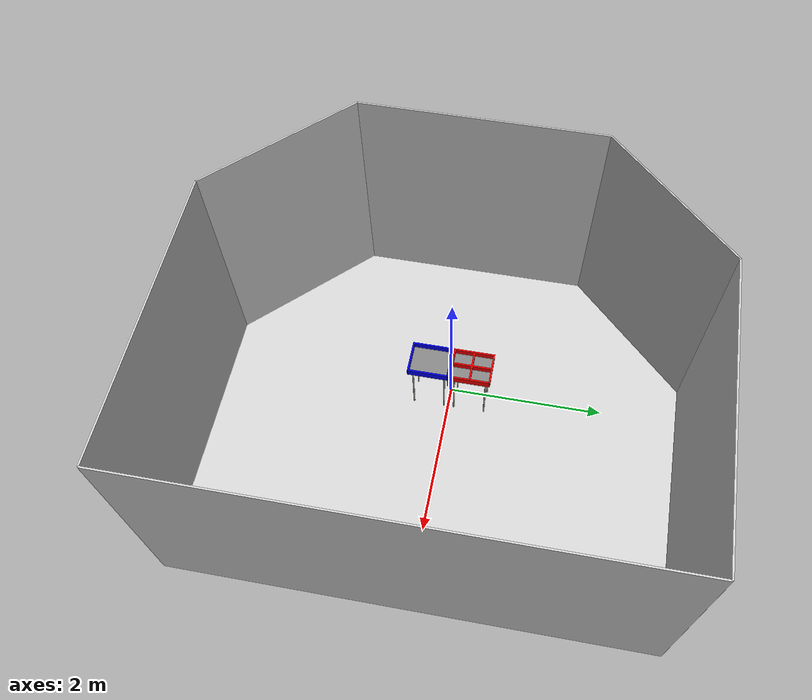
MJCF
<mujoco model="bins_arena">
  <asset>
    <texture builtin="gradient" height="256" rgb1=".9 .9 1." rgb2=".2 .3 .4" type="skybox" width="256"/>
    <texture file="../textures/light-gray-floor-tile.png" type="2d" name="texplane"/>
    <material name="floorplane" reflectance="0.01" shininess="0.0" specular="0.0" texrepeat="2 2" texture="texplane" texuniform="true"/>
    <!-- steel legs -->
    <texture file="../textures/steel-brushed.png" type="cube" name="tex-steel-brushed"/>
    <material name="table_legs_metal" reflectance="0.8" shininess="0.8" texrepeat="1 1" texture="tex-steel-brushed" />
    <!-- plaster walls -->
    <texture file="../textures/light-gray-plaster.png" type="2d" name="tex-light-gray-plaster"/>
    <material name="walls_mat" reflectance="0.0" shininess="0.1" specular="0.1" texrepeat="3 3" texture="tex-light-gray-plaster" texuniform="true" />
    <!-- bins -->
    <texture file="../textures/light-wood.png" type="2d" name="tex-light-wood"/>
    <texture file="../textures/dark-wood.png" type="2d" name="tex-dark-wood"/>
    <material name="light-wood" reflectance="0" texrepeat="15 15" texture="tex-light-wood" texuniform="true"/>
    <material name="dark-wood" reflectance="0" texrepeat="5 5" texture="tex-dark-wood" texuniform="true"/>
  </asset>
  <worldbody>
    <geom condim="3" group="1" material="floorplane" name="floor" pos="0 0 0" size="3 3 .125" type="plane"/>
    <!-- Walls (visual only) -->
    <geom pos="-1.25 2.25 1.5" quat="0.6532815 0.6532815 0.2705981 0.2705981" size="1.06 1.5 0.01" type="box" conaffinity="0" contype="0" group="1" name="wall_leftcorner_visual" material="walls_mat"/>
    <geom pos="-1.25 -2.25 1.5" quat="0.6532815 0.6532815 -0.2705981 -0.2705981" size="1.06 1.5 0.01" type="box" conaffinity="0" contype="0" group="1" name="wall_rightcorner_visual" material="walls_mat"/>
    <geom pos="1.25 3 1.5" quat="0.7071 0.7071 0 0" size="1.75 1.5 0.01" type="box" conaffinity="0" contype="0" group="1" name="wall_left_visual" material="walls_mat"/>
    <geom pos="1.25 -3 1.5" quat="0.7071 -0.7071 0 0" size="1.75 1.5 0.01" type="box" conaffinity="0" contype="0" group="1" name="wall_right_visual" material="walls_mat"/>
    <geom pos="-2 0 1.5" quat="0.5 0.5 0.5 0.5" size="1.5 1.5 0.01" type="box" conaffinity="0" contype="0" group="1" name="wall_rear_visual" material="walls_mat"/>
    <geom pos="3 0 1.5" quat="0.5 0.5 -0.5 -0.5" size="3 1.5 0.01" type="box" conaffinity="0" contype="0" group="1" name="wall_front_visual" material="walls_mat"/>
    <!-- bins -->
    <body name="bin1" pos="0.1 -0.25 0.8">
      <geom pos="0 0 0" size="0.2 0.25 0.02" type="box" group="0" friction="1 0.005 0.0001"/>
      <geom pos="0 0 0" material="light-wood" size="0.2 0.25 0.02" type="box" conaffinity="0" contype="0" group="1"/>
        <geom pos="0 0.25 0.05" size="0.21 0.01 0.05" type="box" group="0" friction="1 0.005 0.0001" rgba="0 0 1 1"/>
        <geom pos="0 0.25 0.05" size="0.21 0.01 0.05" type="box" conaffinity="0" contype="0" group="1" material="light-wood"/>
        <geom pos="0 -0.25 0.05" size="0.21 0.01 0.05" type="box" group="0" friction="1 0.005 0.0001" rgba="0 0 1 1"/>
        <geom pos="0 -0.25 0.05" size="0.21 0.01 0.05" type="box" conaffinity="0" contype="0" group="1" material="light-wood"/>
        <geom pos="0.2 0 0.05" size="0.01 0.25 0.05" type="box" group="0" friction="1 0.005 0.0001" rgba="0 0 1 1"/>
        <geom pos="0.2 0 0.05" size="0.01 0.25 0.05" type="box" conaffinity="0" contype="0" group="1" material="light-wood"/>
        <geom pos="-0.2 0 0.05" size="0.01 0.25 0.05" type="box" group="0" friction="1 0.005 0.0001" rgba="0 0 1 1"/>
        <geom pos="-0.2 0 0.05" size="0.01 0.25 0.05" type="box" conaffinity="0" contype="0" group="1" material="light-wood"/>
        <!-- Legs (visual only) -->
        <geom pos="0.15 0.2 -0.4" size="0.01 0.4" type="cylinder" conaffinity="0" contype="0" group="1" name="bin1_leg1_visual" material="table_legs_metal"/>
        <geom pos="-0.15 0.2 -0.4" size="0.01 0.4" type="cylinder" conaffinity="0" contype="0" group="1" name="bin1_leg2_visual" material="table_legs_metal"/>
        <geom pos="-0.15 -0.2 -0.4" size="0.01 0.4" type="cylinder" conaffinity="0" contype="0" group="1" name="bin1_leg3_visual" material="table_legs_metal"/>
        <geom pos="0.15 -0.2 -0.4" size="0.01 0.4" type="cylinder" conaffinity="0" contype="0" group="1" name="bin1_leg4_visual" material="table_legs_metal"/>
    </body>
    <body name="bin2" pos="0.1 0.28 0.8">
      <geom pos="0 0 0" size="0.2 0.25 0.02" type="box" group="0" friction="1 0.005 0.0001"/>
      <geom pos="0 0 0" size="0.2 0.25 0.02" type="box" conaffinity="0" contype="0" group="1" material="dark-wood"/>
        <geom pos="0 0.25 0.05" size="0.21 0.01 0.05" type="box" group="0" friction="1 0.005 0.0001" rgba="1 0 0 1"/>
        <geom pos="0 0.25 0.05" size="0.21 0.01 0.05" type="box" conaffinity="0" contype="0" group="1" material="dark-wood"/>
        <geom pos="0 0 0.05" size="0.2 0.01 0.05" type="box" group="0" friction="1 0.005 0.0001" rgba="1 0 0 1"/>
        <geom pos="0 0 0.05" size="0.2 0.01 0.05" type="box" conaffinity="0" contype="0" group="1" material="dark-wood"/>
        <geom pos="0 -0.25 0.05" size="0.21 0.01 0.05" type="box" group="0" friction="1 0.005 0.0001" rgba="1 0 0 1"/>
        <geom pos="0 -0.25 0.05" size="0.21 0.01 0.05" type="box" conaffinity="0" contype="0" group="1" material="dark-wood"/>
        <geom pos="0.2 0 0.05" size="0.01 0.25 0.05" type="box" group="0" friction="1 0.005 0.0001" rgba="1 0 0 1"/>
        <geom pos="0.2 0 0.05" size="0.01 0.25 0.05" type="box" conaffinity="0" contype="0" group="1" material="dark-wood"/>
        <geom pos="0 0 0.05" size="0.01 0.25 0.05" type="box" group="0" friction="1 0.005 0.0001" rgba="1 0 0 1"/>
        <geom pos="0 0 0.05" size="0.01 0.25 0.05" type="box" conaffinity="0" contype="0" group="1" material="dark-wood"/>
        <geom pos="-0.2 0 0.05" size="0.01 0.25 0.05" type="box" group="0" friction="1 0.005 0.0001" rgba="1 0 0 1"/>
        <geom pos="-0.2 0 0.05" size="0.01 0.25 0.05" type="box" conaffinity="0" contype="0" group="1" material="dark-wood"/>
        <!-- Legs (visual only) -->
        <geom pos="0.15 0.2 -0.4" size="0.01 0.4" type="cylinder" conaffinity="0" contype="0" group="1" name="bin2_leg1_visual" material="table_legs_metal"/>
        <geom pos="-0.15 0.2 -0.4" size="0.01 0.4" type="cylinder" conaffinity="0" contype="0" group="1" name="bin2_leg2_visual" material="table_legs_metal"/>
        <geom pos="-0.15 -0.2 -0.4" size="0.01 0.4" type="cylinder" conaffinity="0" contype="0" group="1" name="bin2_leg3_visual" material="table_legs_metal"/>
        <geom pos="0.15 -0.2 -0.4" size="0.01 0.4" type="cylinder" conaffinity="0" contype="0" group="1" name="bin2_leg4_visual" material="table_legs_metal"/>
    </body>
    <light pos="1.0 1.0 1.5" dir="-0.2 -0.2 -1" specular="0.3 0.3 0.3" directional="true" castshadow="false"/>
    <!-- front view -->
    <camera mode="fixed" name="frontview" pos="1.6 0 1.45" quat="0.56 0.43 0.43 0.56"/>
    <!-- bird view -->
    <camera mode="fixed" name="birdview" pos="-0.2 0 3.0" quat="0.7071 0 0 0.7071"/>
    <!-- agent view -->
    <camera mode="fixed" name="agentview" pos="1.0 0 1.75" quat="0.653 0.271 0.271 0.653"/>
    <!-- new camera -->
    <camera mode="fixed" name="sideview2" pos="0. -1.5 1.4879572214102434" quat="0.7933533 0.6087614 0 0" />
    <camera mode="fixed" name="backview" pos="-0.8 0.7 1.2" quat=" 0.4777144 0.1530459 -0.5213338 -0.6903455 " />
    <camera mode="fixed" name="spaceview" pos="0.85 0 1.55" quat="0.6341848 0.3127453 0.3127453 0.6341848"/>
    <!-- side agent view -->
    <camera mode="fixed" name="sideagentview" pos="0 0.5 1.35" quat="0.0 0.0 0.383 0.923"/>
    <!-- new camera ends-->
    <!-- side view -->
    <camera mode="fixed" name="sideview" pos="-0.05651774593317116 1.2761224129427358 1.4879572214102434" quat="0.009905065491771751 0.006877963156909582 0.5912228352893879 0.806418094001364" />
    <camera mode="fixed" name="fronttableview" pos="0.8 0 1.2" quat="0.5608419  0.43064642 0.43064642 0.5608419"/>
    <camera mode="fixed" name="sidetableview" pos="0 0.8 1" quat="0.01071808 0.00552625 0.69142354 0.72234905"/>
    <camera mode="fixed" name="squared0view" pos="0.6 0.6 1" quat="0.28633323 0.26970193 0.63667727 0.6632619"/>
    <camera mode="fixed" name="squared0viewfar" pos="0.9 0.9 1.0" quat="0.28633323 0.26970193 0.63667727 0.6632619"/>
    <camera mode="fixed" name="squared0view2" pos="0.6 -0.6 1" quat="0.6714651  0.6409069  0.25949073 0.2665288"/>
    <camera mode="fixed" name="squared0view2far" pos="0.9 -0.9 1" quat="0.6714651  0.6409069  0.25949073 0.2665288"/>
    <camera mode="fixed" name="squared0view3" pos="-0.6 0.6 1" quat="-0.2665288  -0.25949073  0.6409069 0.6714651"/>
    <camera mode="fixed" name="squared0view3far" pos="-0.9 0.9 1" quat="-0.2665288  -0.25949073  0.6409069 0.6714651"/>
    <camera mode="fixed" name="squared0view4" pos="-0.6 -0.6 1" quat="0.6632619 0.63667727 -0.26970193 -0.28633323"/>
    <camera mode="fixed" name="squared0view4far" pos="-0.9 -0.9 1" quat="0.6632619 0.63667727 -0.26970193 -0.28633323"/>
  </worldbody>
</mujoco>
